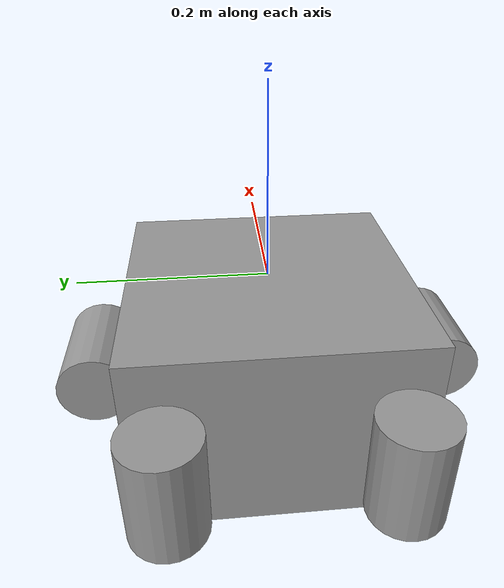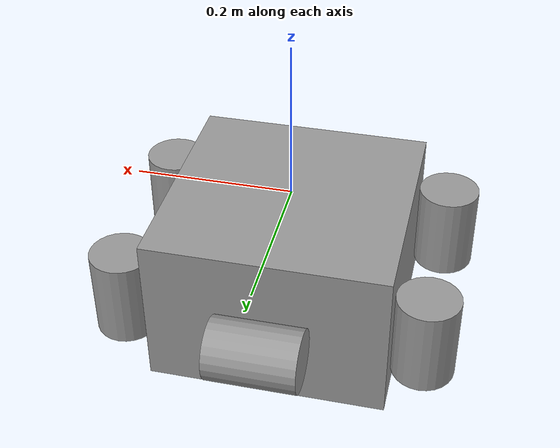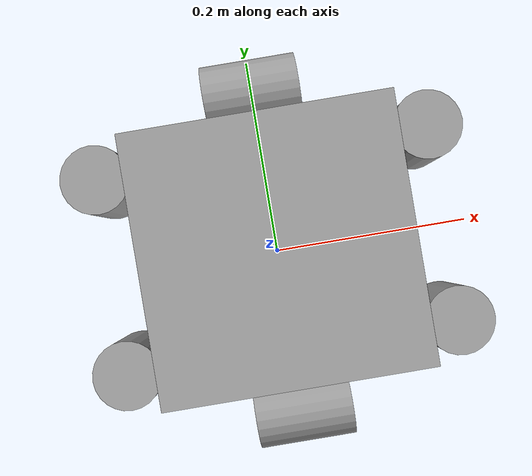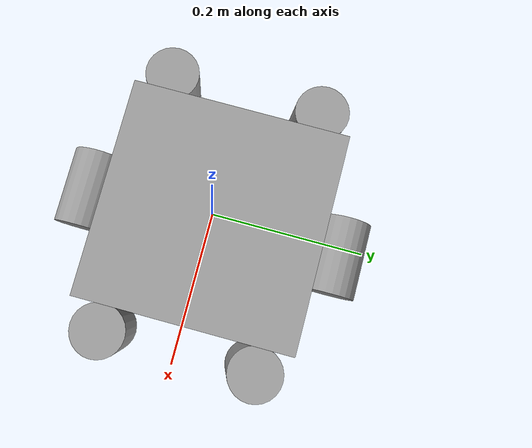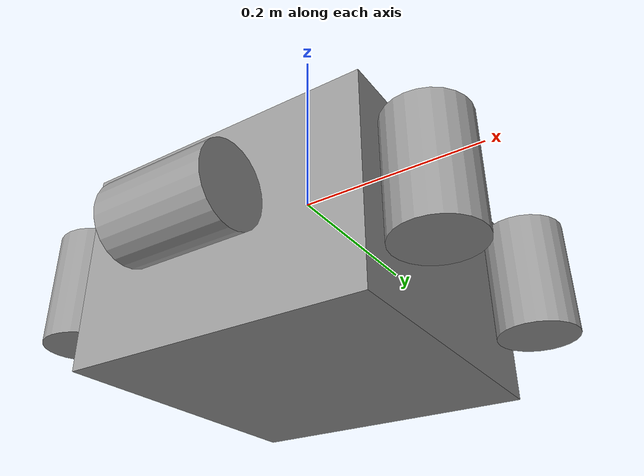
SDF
<?xml version='1.0'?>
<sdf version='1.7'>
  <model name='rov_starting_point'>
    <link name='box_body'>
      <inertial>
        <mass>17.4</mass>
        <inertia>
          <ixx>0.18849999999999997</ixx>
          <ixy>0</ixy>
          <ixz>0</ixz>
          <iyy>0.18849999999999997</iyy>
          <iyz>0</iyz>
          <izz>0.26099999999999995</izz>
        </inertia>
        <pose>0 0 0 0 -0 0</pose>
      </inertial>
      <self_collide>0</self_collide>
      <enable_wind>0</enable_wind>
      <kinematic>0</kinematic>
      <pose>0 0 -0.1 0 -0 0</pose>
      <gravity>1</gravity>
      <visual name='visual'>
        <geometry>
          <box>
            <size>0.3 0.3 0.2</size>
          </box>
        </geometry>
        <material>
          <script>
            <name>Gazebo/Grey</name>
            <uri>file://media/materials/scripts/gazebo.material</uri>
          </script>
          <shader type='pixel'>
            <normal_map>__default__</normal_map>
          </shader>
          <ambient>0.3 0.3 0.3 1</ambient>
          <diffuse>0.7 0.7 0.7 1</diffuse>
          <specular>0.01 0.01 0.01 1</specular>
          <emissive>0 0 0 1</emissive>
        </material>
        <pose>0 0 0 0 -0 0</pose>
        <transparency>0</transparency>
        <cast_shadows>1</cast_shadows>
      </visual>
      <collision name='collision'>
        <laser_retro>0</laser_retro>
        <max_contacts>10</max_contacts>
        <pose>0 0 0 0 -0 0</pose>
        <geometry>
          <box>
            <size>0.3 0.3 0.2</size>
          </box>
        </geometry>
        <surface>
          <friction>
            <ode>
              <mu>1</mu>
              <mu2>1</mu2>
              <fdir1>0 0 0</fdir1>
              <slip1>0</slip1>
              <slip2>0</slip2>
            </ode>
            <torsional>
              <coefficient>1</coefficient>
              <patch_radius>0</patch_radius>
              <surface_radius>0</surface_radius>
              <use_patch_radius>1</use_patch_radius>
              <ode>
                <slip>0</slip>
              </ode>
            </torsional>
          </friction>
          <bounce>
            <restitution_coefficient>0</restitution_coefficient>
            <threshold>1e+06</threshold>
          </bounce>
          <contact>
            <collide_without_contact>0</collide_without_contact>
            <collide_without_contact_bitmask>1</collide_without_contact_bitmask>
            <collide_bitmask>1</collide_bitmask>
            <ode>
              <soft_cfm>0</soft_cfm>
              <soft_erp>0.2</soft_erp>
              <kp>1e+13</kp>
              <kd>1</kd>
              <max_vel>0.01</max_vel>
              <min_depth>0</min_depth>
            </ode>
            <bullet>
              <split_impulse>1</split_impulse>
              <split_impulse_penetration_threshold>-0.01</split_impulse_penetration_threshold>
              <soft_cfm>0</soft_cfm>
              <soft_erp>0.2</soft_erp>
              <kp>1e+13</kp>
              <kd>1</kd>
            </bullet>
          </contact>
        </surface>
      </collision>
    </link>
    <link name='thruster_side_pos'>
      <inertial>
        <mass>0.1</mass>
        <inertia>
          <ixx>76e-6</ixx>
          <ixy>0</ixy>
          <ixz>0</ixz>
          <iyy>1</iyy>
          <iyz>0</iyz>
          <izz>1</izz>
        </inertia>
        <pose>0 0 0 0 -0 0</pose>
      </inertial>
      <pose>-0 0.189 -0.1 1.57081 1.57079 1.57081</pose>
      <gravity>1</gravity>
      <self_collide>0</self_collide>
      <kinematic>0</kinematic>
      <enable_wind>0</enable_wind>
      <visual name='visual'>
        <pose>0 0 0 0 -0 0</pose>
        <geometry>
          <cylinder>
            <radius>0.039</radius>
            <length>0.112</length>
          </cylinder>
        </geometry>
        <material>
          <lighting>1</lighting>
          <script>
            <uri>file://media/materials/scripts/gazebo.material</uri>
            <name>Gazebo/Grey</name>
          </script>
          <shader type='pixel'>
            <normal_map>__default__</normal_map>
          </shader>
          <ambient>0.3 0.3 0.3 1</ambient>
          <diffuse>0.7 0.7 0.7 1</diffuse>
          <specular>0.01 0.01 0.01 1</specular>
          <emissive>0 0 0 1</emissive>
        </material>
        <transparency>0</transparency>
        <cast_shadows>1</cast_shadows>
      </visual>

    </link>
    <link name='thruster_side_neg'>
      <inertial>
        <mass>0.1</mass>
        <inertia>
          <ixx>76e-6</ixx>
          <ixy>0</ixy>
          <ixz>0</ixz>
          <iyy>1</iyy>
          <iyz>0</iyz>
          <izz>1</izz>
        </inertia>
        <pose>0 0 0 0 -0 0</pose>
      </inertial>
      <pose>-0 -0.189 -0.1 1.5708 1.57078 1.5708</pose>
      <gravity>1</gravity>
      <self_collide>0</self_collide>
      <kinematic>0</kinematic>
      <enable_wind>0</enable_wind>
      <visual name='visual'>
        <pose>0 0 0 0 -0 0</pose>
        <geometry>
          <cylinder>
            <radius>0.039</radius>
            <length>0.112</length>
          </cylinder>
        </geometry>
        <material>
          <lighting>1</lighting>
          <script>
            <uri>file://media/materials/scripts/gazebo.material</uri>
            <name>Gazebo/Grey</name>
          </script>
          <shader type='pixel'>
            <normal_map>__default__</normal_map>
          </shader>
          <ambient>0.3 0.3 0.3 1</ambient>
          <diffuse>0.7 0.7 0.7 1</diffuse>
          <specular>0.01 0.01 0.01 1</specular>
          <emissive>0 0 0 1</emissive>
        </material>
        <transparency>0</transparency>
        <cast_shadows>1</cast_shadows>
      </visual>

    </link>
    <link name='thruster_up_pos_left'>
      <inertial>
        <mass>0.1</mass>
        <inertia>
          <ixx>76e-6</ixx>
          <ixy>0</ixy>
          <ixz>0</ixz>
          <iyy>1</iyy>
          <iyz>0</iyz>
          <izz>1</izz>
        </inertia>
        <pose>0 0 0 0 -0 0</pose>
      </inertial>
      <pose>0.189 0.11099999999999999 -0.1 0 -0 0</pose>
      <gravity>1</gravity>
      <self_collide>0</self_collide>
      <kinematic>0</kinematic>
      <enable_wind>0</enable_wind>
      <visual name='visual'>
        <pose>0 0 0 0 -0 0</pose>
        <geometry>
          <cylinder>
            <radius>0.039</radius>
            <length>0.112</length>
          </cylinder>
        </geometry>
        <material>
          <lighting>1</lighting>
          <script>
            <uri>file://media/materials/scripts/gazebo.material</uri>
            <name>Gazebo/Grey</name>
          </script>
          <shader type='pixel'>
            <normal_map>__default__</normal_map>
          </shader>
          <ambient>0.3 0.3 0.3 1</ambient>
          <diffuse>0.7 0.7 0.7 1</diffuse>
          <specular>0.01 0.01 0.01 1</specular>
          <emissive>0 0 0 1</emissive>
        </material>
        <transparency>0</transparency>
        <cast_shadows>1</cast_shadows>
      </visual>

    </link>
    <link name='thruster_up_neg_right'>
      <inertial>
        <mass>0.1</mass>
        <inertia>
          <ixx>76e-6</ixx>
          <ixy>0</ixy>
          <ixz>0</ixz>
          <iyy>1</iyy>
          <iyz>0</iyz>
          <izz>1</izz>
        </inertia>
        <pose>0 0 0 0 -0 0</pose>
      </inertial>
      <pose>-0.189 -0.11099999999999999 -0.1 0 -0 0</pose>
      <gravity>1</gravity>
      <self_collide>0</self_collide>
      <kinematic>0</kinematic>
      <enable_wind>0</enable_wind>
      <visual name='visual'>
        <pose>0 0 0 0 -0 0</pose>
        <geometry>
          <cylinder>
            <radius>0.039</radius>
            <length>0.112</length>
          </cylinder>
        </geometry>
        <material>
          <lighting>1</lighting>
          <script>
            <uri>file://media/materials/scripts/gazebo.material</uri>
            <name>Gazebo/Grey</name>
          </script>
          <shader type='pixel'>
            <normal_map>__default__</normal_map>
          </shader>
          <ambient>0.3 0.3 0.3 1</ambient>
          <diffuse>0.7 0.7 0.7 1</diffuse>
          <specular>0.01 0.01 0.01 1</specular>
          <emissive>0 0 0 1</emissive>
        </material>
        <transparency>0</transparency>
        <cast_shadows>1</cast_shadows>
      </visual>

    </link>
    <link name='thruster_up_pos_right'>
      <inertial>
        <mass>0.1</mass>
        <inertia>
          <ixx>76e-6</ixx>
          <ixy>0</ixy>
          <ixz>0</ixz>
          <iyy>1</iyy>
          <iyz>0</iyz>
          <izz>1</izz>
        </inertia>
        <pose>0 0 0 0 -0 0</pose>
      </inertial>
      <pose>0.189 -0.11099999999999999 -0.1 0 -0 0</pose>
      <gravity>1</gravity>
      <self_collide>0</self_collide>
      <kinematic>0</kinematic>
      <enable_wind>0</enable_wind>
      <visual name='visual'>
        <pose>0 0 0 0 -0 0</pose>
        <geometry>
          <cylinder>
            <radius>0.039</radius>
            <length>0.112</length>
          </cylinder>
        </geometry>
        <material>
          <lighting>1</lighting>
          <script>
            <uri>file://media/materials/scripts/gazebo.material</uri>
            <name>Gazebo/Grey</name>
          </script>
          <shader type='pixel'>
            <normal_map>__default__</normal_map>
          </shader>
          <ambient>0.3 0.3 0.3 1</ambient>
          <diffuse>0.7 0.7 0.7 1</diffuse>
          <specular>0.01 0.01 0.01 1</specular>
          <emissive>0 0 0 1</emissive>
        </material>
        <transparency>0</transparency>
        <cast_shadows>1</cast_shadows>
      </visual>

    </link>
    <link name='thruster_up_neg_left'>
      <inertial>
        <mass>0.1</mass>
        <inertia>
          <ixx>76e-6</ixx>
          <ixy>0</ixy>
          <ixz>0</ixz>
          <iyy>1</iyy>
          <iyz>0</iyz>
          <izz>1</izz>
        </inertia>
        <pose>0 0 0 0 -0 0</pose>
      </inertial>
      <pose>-0.189 0.11099999999999999 -0.1 0 -0 0</pose>
      <gravity>1</gravity>
      <self_collide>0</self_collide>
      <kinematic>0</kinematic>
      <enable_wind>0</enable_wind>
      <visual name='visual'>
        <pose>0 0 0 0 -0 0</pose>
        <geometry>
          <cylinder>
            <radius>0.039</radius>
            <length>0.112</length>
          </cylinder>
        </geometry>
        <material>
          <lighting>1</lighting>
          <script>
            <uri>file://media/materials/scripts/gazebo.material</uri>
            <name>Gazebo/Grey</name>
          </script>
          <shader type='pixel'>
            <normal_map>__default__</normal_map>
          </shader>
          <ambient>0.3 0.3 0.3 1</ambient>
          <diffuse>0.7 0.7 0.7 1</diffuse>
          <specular>0.01 0.01 0.01 1</specular>
          <emissive>0 0 0 1</emissive>
        </material>
        <transparency>0</transparency>
        <cast_shadows>1</cast_shadows>
      </visual>

    </link>
    <joint name='box_thruster_side_pos' type='revolute'>
      <parent>box_body</parent>
      <child>thruster_side_pos</child>
      <pose>0 0 0 0 -0 0</pose>
      <axis>
        <xyz>0 0 1</xyz>
        <limit>
            <lower>-1e+12</lower>
            <upper>1e+12</upper>
            <effort>-1</effort>
            <velocity>5</velocity>
        </limit>
      </axis>
    </joint>
    <joint name='box_thruster_side_neg' type='revolute'>
      <parent>box_body</parent>
      <child>thruster_side_neg</child>
      <pose>0 0 0 0 -0 0</pose>
      <axis>
        <xyz>0 0 1</xyz>
        <limit>
            <lower>-1e+12</lower>
            <upper>1e+12</upper>
            <effort>-1</effort>
            <velocity>5</velocity>
        </limit>
      </axis>
    </joint>
    <joint name='box_thruster_up_pos_left' type='revolute'>
      <parent>box_body</parent>
      <child>thruster_up_pos_left</child>
      <pose>0 0 0 0 -0 0</pose>
      <axis>
        <xyz>0 0 1</xyz>
        <limit>
            <lower>-1e+12</lower>
            <upper>1e+12</upper>
            <effort>-1</effort>
            <velocity>5</velocity>
        </limit>
      </axis>
    </joint>
    <joint name='box_thruster_up_pos_right' type='revolute'>
      <parent>box_body</parent>
      <child>thruster_up_pos_right</child>
      <pose>0 0 0 0 -0 0</pose>
      <axis>
        <xyz>0 0 1</xyz>
        <limit>
            <lower>-1e+12</lower>
            <upper>1e+12</upper>
            <effort>-1</effort>
            <velocity>5</velocity>
        </limit>
      </axis>
    </joint>
    <joint name='box_thruster_up_neg_left' type='revolute'>
      <parent>box_body</parent>
      <child>thruster_up_neg_left</child>
      <pose>0 0 0 0 -0 0</pose>
      <axis>
        <xyz>0 0 1</xyz>
        <limit>
            <lower>-1e+12</lower>
            <upper>1e+12</upper>
            <effort>-1</effort>
            <velocity>5</velocity>
        </limit>
      </axis>
    </joint>
    <joint name='box_thruster_up_neg_right' type='revolute'>
      <parent>box_body</parent>
      <child>thruster_up_neg_right</child>
      <pose>0 0 0 0 -0 0</pose>
      <axis>
        <xyz>0 0 1</xyz>
        <limit>
            <lower>-1e+12</lower>
            <upper>1e+12</upper>
            <effort>-1</effort>
            <velocity>5</velocity>
        </limit>
      </axis>
    </joint>
    <static>0</static>
    <allow_auto_disable>1</allow_auto_disable>
  </model>
</sdf>
